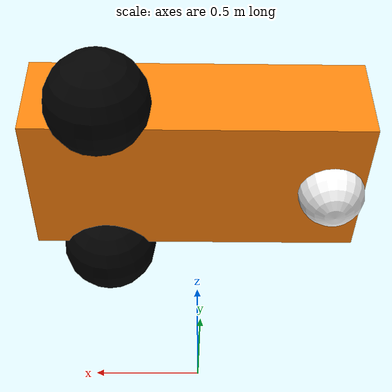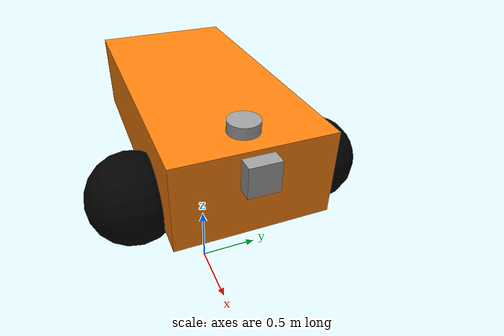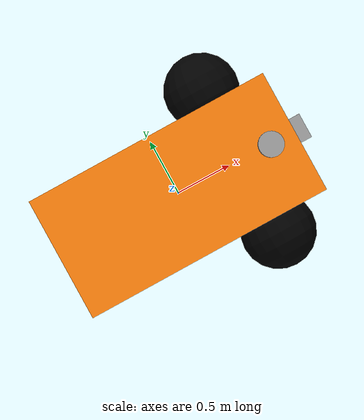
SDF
<?xml version="1.0" ?>
<sdf version="1.8" xmlns:xacro="http://www.ros.org/wiki/xacro">
  <model name="diff_drive" canonical_link="dummy_link">

    <plugin name='gz::sim::systems::Sensors' filename='gz-sim-sensors-system'>
      <render_engine>ogre2</render_engine>
    </plugin>
    <plugin name='Image Display' filename='ImageDisplay'>
      <gz-gui>
        <property key='state' type='string'>docked</property>
      </gz-gui>
      <topic>/camera/image_raw</topic>
    </plugin>

    <plugin name='gz_ros2_control::GazeboSimROS2ControlPlugin' filename='gz_ros2_control-system'>
      <ros>
        <namespace></namespace>
      </ros>
      <parameters>/home/ns/ros2_ws/src/yolo_landmark/config/diff_drive_controller.yaml</parameters>
    </plugin>

    <link name="dummy_link">
      <must_be_base_link>true</must_be_base_link>
    </link>

    <joint name="base_link_joint" type="fixed">
      <parent>dummy_link</parent>
      <child>base_link</child>
      <pose relative_to="dummy_link">0 0 1.5 0 0 0</pose>
    </joint>

    <link name="base_link">
      <pose relative_to="base_link_joint"/>
      <visual name="base_link_visual">
        <geometry>
          <box><size>
            2.01142 1 0.568726
          </size></box>
        </geometry>
        <material>
          <ambient>1 0.5088 0.0468 1</ambient>
          <diffuse>1 0.5088 0.0468 1</diffuse>
        </material>
      </visual>

      <collision name="base_link_collision">
        <geometry>
          <box><size>
            2.01142 1 0.568726
          </size></box>
        </geometry>
      </collision>

      <inertial>
        <mass>1.14395</mass>
        <inertia>
          <ixx>0.126164</ixx>
          <ixy>0.0</ixy>
          <ixz>0.0</ixz>
          <iyy>0.416519</iyy>
          <iyz>0.0</iyz>
          <izz>0.481014</izz>
        </inertia>
      </inertial>
    </link>

    <joint name="left_wheel_joint" type="revolute">
      <parent>base_link</parent>
      <child>left_wheel</child>
      <pose relative_to="base_link">0.554283 0.625029 -0.2 -1.5707 0 0</pose>
      <axis>
        <xyz>0 0 1</xyz>
        <limit>
          <lower>-inf</lower>
          <upper>inf</upper>
        </limit>
        <dynamics>
          <damping>0.2</damping>
        </dynamics>
      </axis>
    </joint>

    <link name="left_wheel">
      <pose relative_to="left_wheel_joint"/>
      <visual name="left_wheel_visual">
        <geometry>
          <sphere><radius>
            0.3
          </radius></sphere>
        </geometry>
        <material>
          <ambient>0 0 0 1</ambient>
          <diffuse>0 0 0 1</diffuse>
        </material>
      </visual>

      <collision name="left_wheel_collision">
        <geometry>
          <sphere><radius>
            0.3
          </radius></sphere>
        </geometry>
      </collision>

      <inertial>
        <mass>2</mass>
        <inertia>
          <ixx>0.145833</ixx>
          <ixy>0.0</ixy>
          <ixz>0.0</ixz>
          <iyy>0.145833</iyy>
          <iyz>0.0</iyz>
          <izz>0.125</izz>
        </inertia>
      </inertial>
    </link>

    <joint name="right_wheel_joint" type="revolute">
        <parent>base_link</parent>
        <child>right_wheel</child>
        <pose relative_to="base_link">0.554283 -0.625029 -0.2 -1.5707 0 0</pose>
        <axis>
          <xyz>0 0 1</xyz>
          <limit>
            <lower>-inf</lower>
            <upper>inf</upper>
          </limit>
          <dynamics>
            <damping>0.2</damping>
          </dynamics>
        </axis>
      </joint>

    <link name="right_wheel">
      <pose relative_to="right_wheel_joint"/>
      <visual name="right_wheel_visual">
        <geometry>
          <sphere><radius>
            0.3
          </radius></sphere>
        </geometry>
        <material>
          <ambient>0 0 0 1</ambient>
          <diffuse>0 0 0 1</diffuse>
        </material>
      </visual>

      <collision name="right_wheel_collision">
        <geometry>
          <sphere><radius>
            0.3
          </radius></sphere>
        </geometry>
      </collision>

      <inertial>
        <mass>2</mass>
        <inertia>
          <ixx>0.145833</ixx>
          <ixy>0.0</ixy>
          <ixz>0.0</ixz>
          <iyy>0.145833</iyy>
          <iyz>0.0</iyz>
          <izz>0.125</izz>
        </inertia>
      </inertial>
    </link>

    <joint name="caster_joint" type="fixed">
      <parent>base_link</parent>
      <child>caster</child>
      <pose relative_to="base_link">-0.80571 0 -0.3 0 0 0</pose>
    </joint>

    <link name="caster">
      <pose relative_to="caster_joint"/>
      <visual name="caster_visual">
        <geometry>
          <sphere><radius>
            0.2
          </radius></sphere>
        </geometry>
        <material>
          <ambient>1 1 1 1</ambient>
          <diffuse>1 1 1 1</diffuse>
        </material>
      </visual>

      <collision name="caster_collision">
        <geometry>
          <sphere><radius>
            0.2
          </radius></sphere>
        </geometry>
      </collision>

      <inertial>
        <mass>0.005</mass>
        <inertia>
          <ixx>0.1</ixx>
          <ixy>0.0</ixy>
          <ixz>0.0</ixz>
          <iyy>0.1</iyy>
          <iyz>0.0</iyz>
          <izz>0.1</izz>
        </inertia>
      </inertial>
    </link>

    <joint name="lidar_joint" type="fixed">
      <pose relative_to='base_link'>0.8 0 0.31 0 0 0</pose>
      <parent>base_link</parent>
      <child>lidar_link</child>
    </joint>

    <link name="lidar_link">
      <pose relative_to='lidar_joint'>0 0 0 0 0 0</pose>
      <inertial>
        <mass>0.01</mass>
        <inertia>
          <ixx>0.0001</ixx>
          <ixy>0.0</ixy>
          <ixz>0.0</ixz>
          <iyy>0.0001</iyy>
          <iyz>0.0</iyz>
          <izz>0.0001</izz>
        </inertia>
      </inertial>

      <visual name="lidar_visual">
        <geometry>
          <cylinder>
            <radius>0.1</radius>
            <length>0.1</length>
          </cylinder>
        </geometry>
        <material>
          <ambient>0.625 0.625 0.625 1</ambient>
          <diffuse>0.625 0.625 0.625 1</diffuse>
        </material>
      </visual>

      <collision name="lidar_collision">
        <geometry>
          <cylinder>
            <radius>0.1</radius>
            <length>0.1</length>
          </cylinder>
        </geometry>
      </collision>

      <sensor name='lidar' type='gpu_lidar'>
        <topic>/scan</topic>
        <update_rate>30</update_rate>
        <enable_metrics>false</enable_metrics>
        <lidar>
          <frame_id></frame_id>
          <scan>
            <horizontal>
              <samples>1440</samples>
              <resolution>1</resolution>
              <min_angle>-3.141592653589</min_angle>
              <max_angle>3.141592653589</max_angle>
            </horizontal>
            <vertical>
              <samples>1</samples>
              <min_angle>0</min_angle>
              <max_angle>0</max_angle>
              <resolution>1</resolution>
            </vertical>
          </scan>
          <range>
            <min>1.0000000000000001e-05</min>
            <max>40</max>
            <resolution>0.015</resolution>
          </range>
          <noise>
            <type>gaussian</type>
            <mean>0</mean>
            <stddev>0.01</stddev>
          </noise>
          <visibility_mask>4294967295</visibility_mask>
        </lidar>
      </sensor>
    </link>

    <joint name="camera_joint" type="fixed">
      <pose relative_to='base_link'>1 0 0.15 0 0 0</pose>
      <parent>base_link</parent>
      <child>camera_link</child>
    </joint>

    <link name="camera_link">
      <pose relative_to='camera_joint'>0 0 0 0 0 0</pose>
      <inertial>
        <mass>0.01</mass>
        <inertia>
          <ixx>0.0001</ixx>
          <ixy>0.0</ixy>
          <ixz>0.0</ixz>
          <iyy>0.0001</iyy>
          <iyz>0.0</iyz>
          <izz>0.0001</izz>
        </inertia>
      </inertial>

      <visual name="camera_visual">
        <geometry>
          <box>
            <size>0.2 0.2 0.2</size>
          </box>
        </geometry>
        <material>
          <ambient>0.625 0.625 0.625 1</ambient>
          <diffuse>0.625 0.625 0.625 1</diffuse>
        </material>
      </visual>

      <collision name="camera_collision">
        <geometry>
          <box>
            <size>0.2 0.2 0.2</size>
          </box>
        </geometry>
      </collision>

      <sensor name='camera' type='camera'>
        <topic>/camera/image_raw</topic>
        <update_rate>30</update_rate>
        <enable_metrics>false</enable_metrics>
        <camera name='__default__'>
          <pose>0 0 0 0 0 0</pose>
          <horizontal_fov>1.047</horizontal_fov>
          <image>
            <width>720</width>
            <height>512</height>
            <format>RGB_INT8</format>
            <anti_aliasing>4</anti_aliasing>
          </image>
          <camera_info_topic>/camera_info</camera_info_topic>
          <trigger_topic></trigger_topic>
          <triggered>false</triggered>
          <clip>
            <near>0.1</near>
            <far>100</far>
          </clip>
          <save enabled='false'>
            <path>__default__</path>
          </save>
          <visibility_mask>4294967295</visibility_mask>
          <noise>
            <type>none</type>
            <mean>0</mean>
            <stddev>0</stddev>
          </noise>
          <distortion>
            <k1>0</k1>
            <k2>0</k2>
            <k3>0</k3>
            <p1>0</p1>
            <p2>0</p2>
            <center>0.5 0.5</center>
          </distortion>
          <lens>
            <type>stereographic</type>
            <scale_to_hfov>true</scale_to_hfov>
            <cutoff_angle>1.5707963267948966</cutoff_angle>
            <env_texture_size>256</env_texture_size>
          </lens>
          <optical_frame_id></optical_frame_id>
        </camera>
      </sensor>
    </link>

    <ros2_control name="GazeboSimSystem" type="system">
      <hardware>
        <plugin>gz_ros2_control/GazeboSimSystem</plugin>
      </hardware>
      <joint name="left_wheel_joint">
        <command_interface name="velocity">
          <param name="min">-1</param>
          <param name="max">1</param>
        </command_interface>
        <state_interface name="position"/>
        <state_interface name="velocity"/>
      </joint>
      <joint name="right_wheel_joint">
        <command_interface name="velocity">
          <param name="min">-1</param>
          <param name="max">1</param>
        </command_interface>
        <state_interface name="position"/>
        <state_interface name="velocity"/>
      </joint>
    </ros2_control>

  </model>
</sdf>
